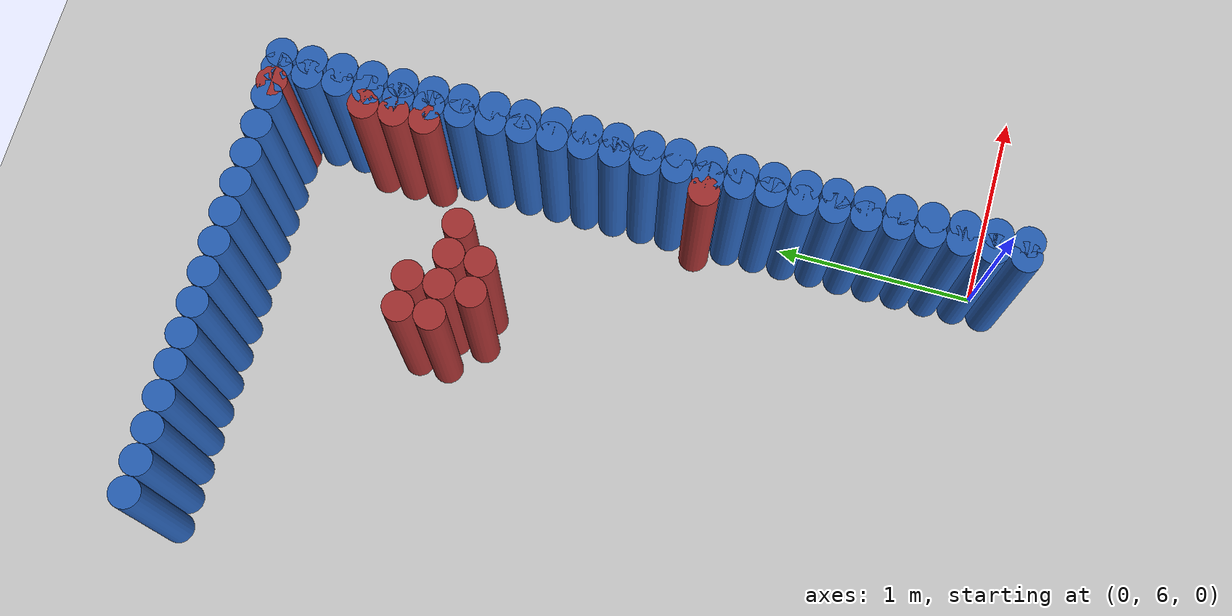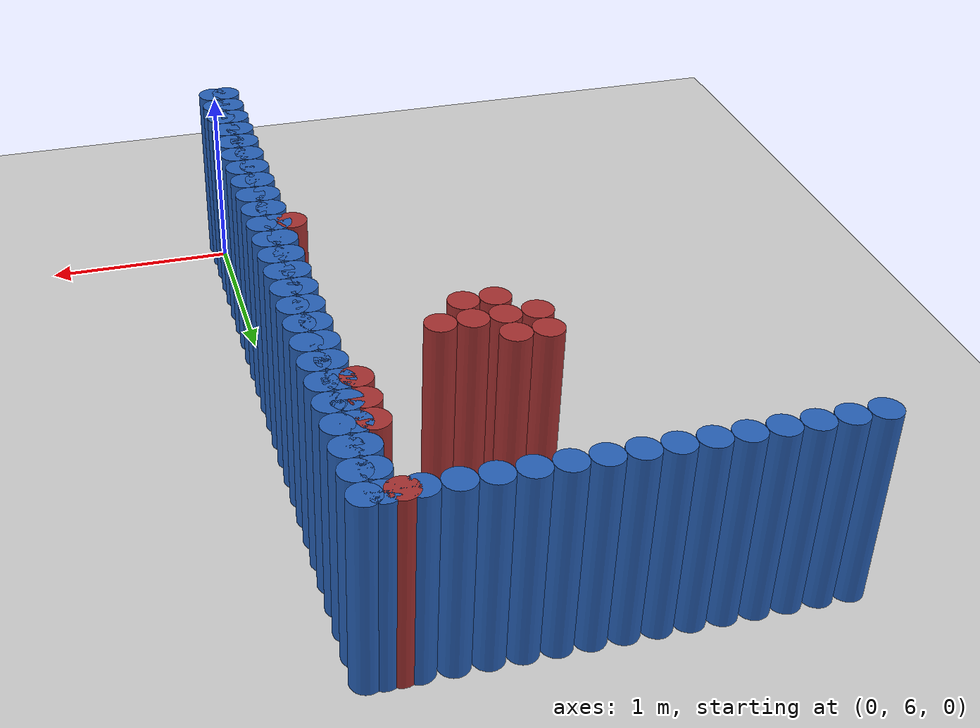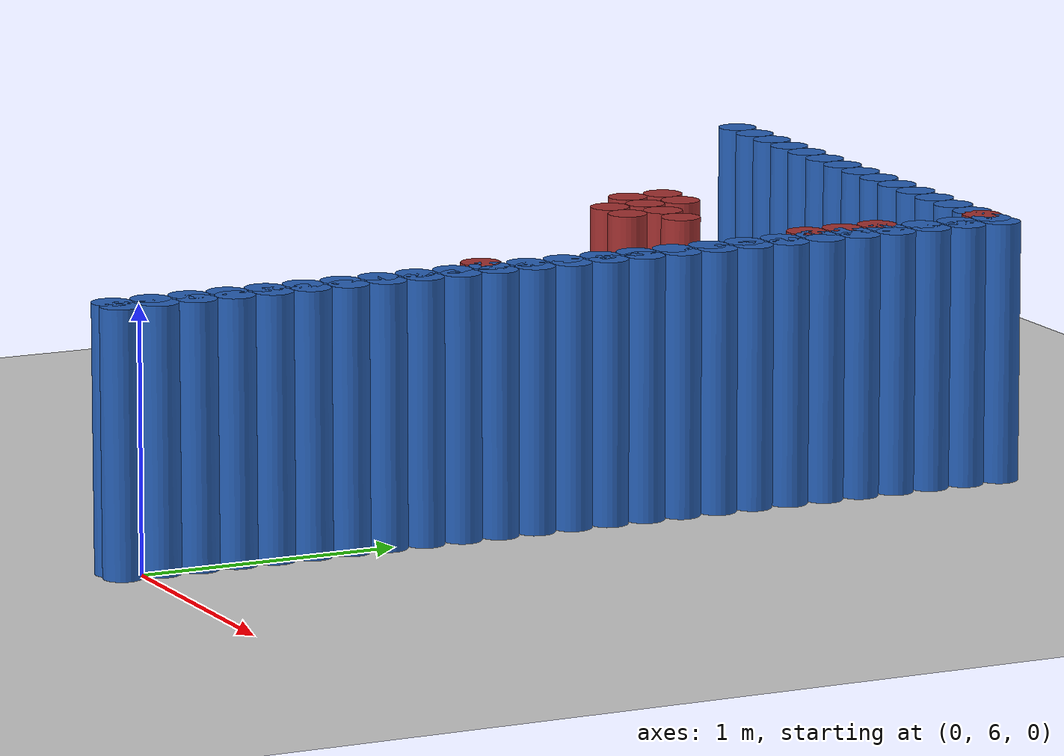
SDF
<sdf version="1.6">
 <world name="barn_world">
  <model name="ground_plane">
   <static>1</static>
   <link name="link">
    <collision name="collision">
     <geometry><plane><normal>0 0 1</normal><size>100 100</size></plane></geometry>
    </collision>
    <visual name="visual">
     <geometry><plane><normal>0 0 1</normal><size>100 100</size></plane></geometry>
     <material>
      <script><uri>file://media/materials/scripts/gazebo.material</uri><name>Gazebo/Grey</name></script>
     </material>
    </visual>
   </link>
  </model>
  <model name="unit_cylinder_175">
   <static>1</static>
   <pose>-1.0500 8.4750 0.5 0 0 0</pose>
   <link name="link">
    <collision name="collision">
     <geometry><cylinder><radius>0.075</radius><length>1</length></cylinder></geometry>
    </collision>
    <visual name="visual">
     <geometry><cylinder><radius>0.075</radius><length>1</length></cylinder></geometry>
     <material><ambient>0.648 0.192 0.192 1</ambient><diffuse>0.648 0.192 0.192 1</diffuse></material>
    </visual>
   </link>
  </model>
  <model name="unit_cylinder_176">
   <static>1</static>
   <pose>-1.0500 8.6250 0.5 0 0 0</pose>
   <link name="link">
    <collision name="collision">
     <geometry><cylinder><radius>0.075</radius><length>1</length></cylinder></geometry>
    </collision>
    <visual name="visual">
     <geometry><cylinder><radius>0.075</radius><length>1</length></cylinder></geometry>
     <material><ambient>0.648 0.192 0.192 1</ambient><diffuse>0.648 0.192 0.192 1</diffuse></material>
    </visual>
   </link>
  </model>
  <model name="unit_cylinder_177">
   <static>1</static>
   <pose>-0.9000 8.3250 0.5 0 0 0</pose>
   <link name="link">
    <collision name="collision">
     <geometry><cylinder><radius>0.075</radius><length>1</length></cylinder></geometry>
    </collision>
    <visual name="visual">
     <geometry><cylinder><radius>0.075</radius><length>1</length></cylinder></geometry>
     <material><ambient>0.648 0.192 0.192 1</ambient><diffuse>0.648 0.192 0.192 1</diffuse></material>
    </visual>
   </link>
  </model>
  <model name="unit_cylinder_178">
   <static>1</static>
   <pose>-0.9000 8.4750 0.5 0 0 0</pose>
   <link name="link">
    <collision name="collision">
     <geometry><cylinder><radius>0.075</radius><length>1</length></cylinder></geometry>
    </collision>
    <visual name="visual">
     <geometry><cylinder><radius>0.075</radius><length>1</length></cylinder></geometry>
     <material><ambient>0.648 0.192 0.192 1</ambient><diffuse>0.648 0.192 0.192 1</diffuse></material>
    </visual>
   </link>
  </model>
  <model name="unit_cylinder_179">
   <static>1</static>
   <pose>-0.9000 8.6250 0.5 0 0 0</pose>
   <link name="link">
    <collision name="collision">
     <geometry><cylinder><radius>0.075</radius><length>1</length></cylinder></geometry>
    </collision>
    <visual name="visual">
     <geometry><cylinder><radius>0.075</radius><length>1</length></cylinder></geometry>
     <material><ambient>0.648 0.192 0.192 1</ambient><diffuse>0.648 0.192 0.192 1</diffuse></material>
    </visual>
   </link>
  </model>
  <model name="unit_cylinder_180">
   <static>1</static>
   <pose>-0.7500 8.3250 0.5 0 0 0</pose>
   <link name="link">
    <collision name="collision">
     <geometry><cylinder><radius>0.075</radius><length>1</length></cylinder></geometry>
    </collision>
    <visual name="visual">
     <geometry><cylinder><radius>0.075</radius><length>1</length></cylinder></geometry>
     <material><ambient>0.648 0.192 0.192 1</ambient><diffuse>0.648 0.192 0.192 1</diffuse></material>
    </visual>
   </link>
  </model>
  <model name="unit_cylinder_181">
   <static>1</static>
   <pose>-0.7500 8.4750 0.5 0 0 0</pose>
   <link name="link">
    <collision name="collision">
     <geometry><cylinder><radius>0.075</radius><length>1</length></cylinder></geometry>
    </collision>
    <visual name="visual">
     <geometry><cylinder><radius>0.075</radius><length>1</length></cylinder></geometry>
     <material><ambient>0.648 0.192 0.192 1</ambient><diffuse>0.648 0.192 0.192 1</diffuse></material>
    </visual>
   </link>
  </model>
  <model name="unit_cylinder_182">
   <static>1</static>
   <pose>-0.6000 8.4750 0.5 0 0 0</pose>
   <link name="link">
    <collision name="collision">
     <geometry><cylinder><radius>0.075</radius><length>1</length></cylinder></geometry>
    </collision>
    <visual name="visual">
     <geometry><cylinder><radius>0.075</radius><length>1</length></cylinder></geometry>
     <material><ambient>0.648 0.192 0.192 1</ambient><diffuse>0.648 0.192 0.192 1</diffuse></material>
    </visual>
   </link>
  </model>
  <model name="unit_cylinder_186">
   <static>1</static>
   <pose>-0.1500 7.4250 0.5 0 0 0</pose>
   <link name="link">
    <collision name="collision">
     <geometry><cylinder><radius>0.075</radius><length>1</length></cylinder></geometry>
    </collision>
    <visual name="visual">
     <geometry><cylinder><radius>0.075</radius><length>1</length></cylinder></geometry>
     <material><ambient>0.648 0.192 0.192 1</ambient><diffuse>0.648 0.192 0.192 1</diffuse></material>
    </visual>
   </link>
  </model>
  <model name="unit_cylinder_187">
   <static>1</static>
   <pose>-0.1500 8.7750 0.5 0 0 0</pose>
   <link name="link">
    <collision name="collision">
     <geometry><cylinder><radius>0.075</radius><length>1</length></cylinder></geometry>
    </collision>
    <visual name="visual">
     <geometry><cylinder><radius>0.075</radius><length>1</length></cylinder></geometry>
     <material><ambient>0.648 0.192 0.192 1</ambient><diffuse>0.648 0.192 0.192 1</diffuse></material>
    </visual>
   </link>
  </model>
  <model name="unit_cylinder_188">
   <static>1</static>
   <pose>-0.1500 8.9250 0.5 0 0 0</pose>
   <link name="link">
    <collision name="collision">
     <geometry><cylinder><radius>0.075</radius><length>1</length></cylinder></geometry>
    </collision>
    <visual name="visual">
     <geometry><cylinder><radius>0.075</radius><length>1</length></cylinder></geometry>
     <material><ambient>0.648 0.192 0.192 1</ambient><diffuse>0.648 0.192 0.192 1</diffuse></material>
    </visual>
   </link>
  </model>
  <model name="unit_cylinder_189">
   <static>1</static>
   <pose>-0.1500 9.0750 0.5 0 0 0</pose>
   <link name="link">
    <collision name="collision">
     <geometry><cylinder><radius>0.075</radius><length>1</length></cylinder></geometry>
    </collision>
    <visual name="visual">
     <geometry><cylinder><radius>0.075</radius><length>1</length></cylinder></geometry>
     <material><ambient>0.648 0.192 0.192 1</ambient><diffuse>0.648 0.192 0.192 1</diffuse></material>
    </visual>
   </link>
  </model>
  <model name="unit_cylinder_190">
   <static>1</static>
   <pose>-0.1500 9.5250 0.5 0 0 0</pose>
   <link name="link">
    <collision name="collision">
     <geometry><cylinder><radius>0.075</radius><length>1</length></cylinder></geometry>
    </collision>
    <visual name="visual">
     <geometry><cylinder><radius>0.075</radius><length>1</length></cylinder></geometry>
     <material><ambient>0.648 0.192 0.192 1</ambient><diffuse>0.648 0.192 0.192 1</diffuse></material>
    </visual>
   </link>
  </model>
  <model name="unit_cylinder_196">
   <static>1</static>
   <pose>0.0000 5.9250 0.5 0 0 0</pose>
   <link name="link">
    <collision name="collision">
     <geometry><cylinder><radius>0.075</radius><length>1</length></cylinder></geometry>
    </collision>
    <visual name="visual">
     <geometry><cylinder><radius>0.075</radius><length>1</length></cylinder></geometry>
     <material><ambient>0.152 0.379 0.72 1</ambient><diffuse>0.152 0.379 0.72 1</diffuse></material>
    </visual>
   </link>
  </model>
  <model name="unit_cylinder_197">
   <static>1</static>
   <pose>0.0000 6.0750 0.5 0 0 0</pose>
   <link name="link">
    <collision name="collision">
     <geometry><cylinder><radius>0.075</radius><length>1</length></cylinder></geometry>
    </collision>
    <visual name="visual">
     <geometry><cylinder><radius>0.075</radius><length>1</length></cylinder></geometry>
     <material><ambient>0.152 0.379 0.72 1</ambient><diffuse>0.152 0.379 0.72 1</diffuse></material>
    </visual>
   </link>
  </model>
  <model name="unit_cylinder_198">
   <static>1</static>
   <pose>0.0000 6.2250 0.5 0 0 0</pose>
   <link name="link">
    <collision name="collision">
     <geometry><cylinder><radius>0.075</radius><length>1</length></cylinder></geometry>
    </collision>
    <visual name="visual">
     <geometry><cylinder><radius>0.075</radius><length>1</length></cylinder></geometry>
     <material><ambient>0.152 0.379 0.72 1</ambient><diffuse>0.152 0.379 0.72 1</diffuse></material>
    </visual>
   </link>
  </model>
  <model name="unit_cylinder_199">
   <static>1</static>
   <pose>0.0000 6.3750 0.5 0 0 0</pose>
   <link name="link">
    <collision name="collision">
     <geometry><cylinder><radius>0.075</radius><length>1</length></cylinder></geometry>
    </collision>
    <visual name="visual">
     <geometry><cylinder><radius>0.075</radius><length>1</length></cylinder></geometry>
     <material><ambient>0.152 0.379 0.72 1</ambient><diffuse>0.152 0.379 0.72 1</diffuse></material>
    </visual>
   </link>
  </model>
  <model name="unit_cylinder_200">
   <static>1</static>
   <pose>0.0000 6.5250 0.5 0 0 0</pose>
   <link name="link">
    <collision name="collision">
     <geometry><cylinder><radius>0.075</radius><length>1</length></cylinder></geometry>
    </collision>
    <visual name="visual">
     <geometry><cylinder><radius>0.075</radius><length>1</length></cylinder></geometry>
     <material><ambient>0.152 0.379 0.72 1</ambient><diffuse>0.152 0.379 0.72 1</diffuse></material>
    </visual>
   </link>
  </model>
  <model name="unit_cylinder_201">
   <static>1</static>
   <pose>0.0000 6.6750 0.5 0 0 0</pose>
   <link name="link">
    <collision name="collision">
     <geometry><cylinder><radius>0.075</radius><length>1</length></cylinder></geometry>
    </collision>
    <visual name="visual">
     <geometry><cylinder><radius>0.075</radius><length>1</length></cylinder></geometry>
     <material><ambient>0.152 0.379 0.72 1</ambient><diffuse>0.152 0.379 0.72 1</diffuse></material>
    </visual>
   </link>
  </model>
  <model name="unit_cylinder_202">
   <static>1</static>
   <pose>0.0000 6.8250 0.5 0 0 0</pose>
   <link name="link">
    <collision name="collision">
     <geometry><cylinder><radius>0.075</radius><length>1</length></cylinder></geometry>
    </collision>
    <visual name="visual">
     <geometry><cylinder><radius>0.075</radius><length>1</length></cylinder></geometry>
     <material><ambient>0.152 0.379 0.72 1</ambient><diffuse>0.152 0.379 0.72 1</diffuse></material>
    </visual>
   </link>
  </model>
  <model name="unit_cylinder_203">
   <static>1</static>
   <pose>0.0000 6.9750 0.5 0 0 0</pose>
   <link name="link">
    <collision name="collision">
     <geometry><cylinder><radius>0.075</radius><length>1</length></cylinder></geometry>
    </collision>
    <visual name="visual">
     <geometry><cylinder><radius>0.075</radius><length>1</length></cylinder></geometry>
     <material><ambient>0.152 0.379 0.72 1</ambient><diffuse>0.152 0.379 0.72 1</diffuse></material>
    </visual>
   </link>
  </model>
  <model name="unit_cylinder_204">
   <static>1</static>
   <pose>0.0000 7.1250 0.5 0 0 0</pose>
   <link name="link">
    <collision name="collision">
     <geometry><cylinder><radius>0.075</radius><length>1</length></cylinder></geometry>
    </collision>
    <visual name="visual">
     <geometry><cylinder><radius>0.075</radius><length>1</length></cylinder></geometry>
     <material><ambient>0.152 0.379 0.72 1</ambient><diffuse>0.152 0.379 0.72 1</diffuse></material>
    </visual>
   </link>
  </model>
  <model name="unit_cylinder_205">
   <static>1</static>
   <pose>0.0000 7.2750 0.5 0 0 0</pose>
   <link name="link">
    <collision name="collision">
     <geometry><cylinder><radius>0.075</radius><length>1</length></cylinder></geometry>
    </collision>
    <visual name="visual">
     <geometry><cylinder><radius>0.075</radius><length>1</length></cylinder></geometry>
     <material><ambient>0.152 0.379 0.72 1</ambient><diffuse>0.152 0.379 0.72 1</diffuse></material>
    </visual>
   </link>
  </model>
  <model name="unit_cylinder_206">
   <static>1</static>
   <pose>0.0000 7.4250 0.5 0 0 0</pose>
   <link name="link">
    <collision name="collision">
     <geometry><cylinder><radius>0.075</radius><length>1</length></cylinder></geometry>
    </collision>
    <visual name="visual">
     <geometry><cylinder><radius>0.075</radius><length>1</length></cylinder></geometry>
     <material><ambient>0.152 0.379 0.72 1</ambient><diffuse>0.152 0.379 0.72 1</diffuse></material>
    </visual>
   </link>
  </model>
  <model name="unit_cylinder_207">
   <static>1</static>
   <pose>0.0000 7.5750 0.5 0 0 0</pose>
   <link name="link">
    <collision name="collision">
     <geometry><cylinder><radius>0.075</radius><length>1</length></cylinder></geometry>
    </collision>
    <visual name="visual">
     <geometry><cylinder><radius>0.075</radius><length>1</length></cylinder></geometry>
     <material><ambient>0.152 0.379 0.72 1</ambient><diffuse>0.152 0.379 0.72 1</diffuse></material>
    </visual>
   </link>
  </model>
  <model name="unit_cylinder_208">
   <static>1</static>
   <pose>0.0000 7.7250 0.5 0 0 0</pose>
   <link name="link">
    <collision name="collision">
     <geometry><cylinder><radius>0.075</radius><length>1</length></cylinder></geometry>
    </collision>
    <visual name="visual">
     <geometry><cylinder><radius>0.075</radius><length>1</length></cylinder></geometry>
     <material><ambient>0.152 0.379 0.72 1</ambient><diffuse>0.152 0.379 0.72 1</diffuse></material>
    </visual>
   </link>
  </model>
  <model name="unit_cylinder_209">
   <static>1</static>
   <pose>0.0000 7.8750 0.5 0 0 0</pose>
   <link name="link">
    <collision name="collision">
     <geometry><cylinder><radius>0.075</radius><length>1</length></cylinder></geometry>
    </collision>
    <visual name="visual">
     <geometry><cylinder><radius>0.075</radius><length>1</length></cylinder></geometry>
     <material><ambient>0.152 0.379 0.72 1</ambient><diffuse>0.152 0.379 0.72 1</diffuse></material>
    </visual>
   </link>
  </model>
  <model name="unit_cylinder_210">
   <static>1</static>
   <pose>0.0000 8.0250 0.5 0 0 0</pose>
   <link name="link">
    <collision name="collision">
     <geometry><cylinder><radius>0.075</radius><length>1</length></cylinder></geometry>
    </collision>
    <visual name="visual">
     <geometry><cylinder><radius>0.075</radius><length>1</length></cylinder></geometry>
     <material><ambient>0.152 0.379 0.72 1</ambient><diffuse>0.152 0.379 0.72 1</diffuse></material>
    </visual>
   </link>
  </model>
  <model name="unit_cylinder_211">
   <static>1</static>
   <pose>0.0000 8.1750 0.5 0 0 0</pose>
   <link name="link">
    <collision name="collision">
     <geometry><cylinder><radius>0.075</radius><length>1</length></cylinder></geometry>
    </collision>
    <visual name="visual">
     <geometry><cylinder><radius>0.075</radius><length>1</length></cylinder></geometry>
     <material><ambient>0.152 0.379 0.72 1</ambient><diffuse>0.152 0.379 0.72 1</diffuse></material>
    </visual>
   </link>
  </model>
  <model name="unit_cylinder_212">
   <static>1</static>
   <pose>0.0000 8.3250 0.5 0 0 0</pose>
   <link name="link">
    <collision name="collision">
     <geometry><cylinder><radius>0.075</radius><length>1</length></cylinder></geometry>
    </collision>
    <visual name="visual">
     <geometry><cylinder><radius>0.075</radius><length>1</length></cylinder></geometry>
     <material><ambient>0.152 0.379 0.72 1</ambient><diffuse>0.152 0.379 0.72 1</diffuse></material>
    </visual>
   </link>
  </model>
  <model name="unit_cylinder_213">
   <static>1</static>
   <pose>0.0000 8.4750 0.5 0 0 0</pose>
   <link name="link">
    <collision name="collision">
     <geometry><cylinder><radius>0.075</radius><length>1</length></cylinder></geometry>
    </collision>
    <visual name="visual">
     <geometry><cylinder><radius>0.075</radius><length>1</length></cylinder></geometry>
     <material><ambient>0.152 0.379 0.72 1</ambient><diffuse>0.152 0.379 0.72 1</diffuse></material>
    </visual>
   </link>
  </model>
  <model name="unit_cylinder_214">
   <static>1</static>
   <pose>0.0000 8.6250 0.5 0 0 0</pose>
   <link name="link">
    <collision name="collision">
     <geometry><cylinder><radius>0.075</radius><length>1</length></cylinder></geometry>
    </collision>
    <visual name="visual">
     <geometry><cylinder><radius>0.075</radius><length>1</length></cylinder></geometry>
     <material><ambient>0.152 0.379 0.72 1</ambient><diffuse>0.152 0.379 0.72 1</diffuse></material>
    </visual>
   </link>
  </model>
  <model name="unit_cylinder_215">
   <static>1</static>
   <pose>0.0000 8.7750 0.5 0 0 0</pose>
   <link name="link">
    <collision name="collision">
     <geometry><cylinder><radius>0.075</radius><length>1</length></cylinder></geometry>
    </collision>
    <visual name="visual">
     <geometry><cylinder><radius>0.075</radius><length>1</length></cylinder></geometry>
     <material><ambient>0.152 0.379 0.72 1</ambient><diffuse>0.152 0.379 0.72 1</diffuse></material>
    </visual>
   </link>
  </model>
  <model name="unit_cylinder_216">
   <static>1</static>
   <pose>0.0000 8.9250 0.5 0 0 0</pose>
   <link name="link">
    <collision name="collision">
     <geometry><cylinder><radius>0.075</radius><length>1</length></cylinder></geometry>
    </collision>
    <visual name="visual">
     <geometry><cylinder><radius>0.075</radius><length>1</length></cylinder></geometry>
     <material><ambient>0.152 0.379 0.72 1</ambient><diffuse>0.152 0.379 0.72 1</diffuse></material>
    </visual>
   </link>
  </model>
  <model name="unit_cylinder_217">
   <static>1</static>
   <pose>0.0000 9.0750 0.5 0 0 0</pose>
   <link name="link">
    <collision name="collision">
     <geometry><cylinder><radius>0.075</radius><length>1</length></cylinder></geometry>
    </collision>
    <visual name="visual">
     <geometry><cylinder><radius>0.075</radius><length>1</length></cylinder></geometry>
     <material><ambient>0.152 0.379 0.72 1</ambient><diffuse>0.152 0.379 0.72 1</diffuse></material>
    </visual>
   </link>
  </model>
  <model name="unit_cylinder_218">
   <static>1</static>
   <pose>0.0000 9.2250 0.5 0 0 0</pose>
   <link name="link">
    <collision name="collision">
     <geometry><cylinder><radius>0.075</radius><length>1</length></cylinder></geometry>
    </collision>
    <visual name="visual">
     <geometry><cylinder><radius>0.075</radius><length>1</length></cylinder></geometry>
     <material><ambient>0.152 0.379 0.72 1</ambient><diffuse>0.152 0.379 0.72 1</diffuse></material>
    </visual>
   </link>
  </model>
  <model name="unit_cylinder_219">
   <static>1</static>
   <pose>0.0000 9.3750 0.5 0 0 0</pose>
   <link name="link">
    <collision name="collision">
     <geometry><cylinder><radius>0.075</radius><length>1</length></cylinder></geometry>
    </collision>
    <visual name="visual">
     <geometry><cylinder><radius>0.075</radius><length>1</length></cylinder></geometry>
     <material><ambient>0.152 0.379 0.72 1</ambient><diffuse>0.152 0.379 0.72 1</diffuse></material>
    </visual>
   </link>
  </model>
  <model name="unit_cylinder_220">
   <static>1</static>
   <pose>0.0000 9.5250 0.5 0 0 0</pose>
   <link name="link">
    <collision name="collision">
     <geometry><cylinder><radius>0.075</radius><length>1</length></cylinder></geometry>
    </collision>
    <visual name="visual">
     <geometry><cylinder><radius>0.075</radius><length>1</length></cylinder></geometry>
     <material><ambient>0.152 0.379 0.72 1</ambient><diffuse>0.152 0.379 0.72 1</diffuse></material>
    </visual>
   </link>
  </model>
  <model name="unit_cylinder_221">
   <static>1</static>
   <pose>-0.0750 9.5250 0.5 0 0 0</pose>
   <link name="link">
    <collision name="collision">
     <geometry><cylinder><radius>0.075</radius><length>1</length></cylinder></geometry>
    </collision>
    <visual name="visual">
     <geometry><cylinder><radius>0.075</radius><length>1</length></cylinder></geometry>
     <material><ambient>0.152 0.379 0.72 1</ambient><diffuse>0.152 0.379 0.72 1</diffuse></material>
    </visual>
   </link>
  </model>
  <model name="unit_cylinder_222">
   <static>1</static>
   <pose>-0.2250 9.5250 0.5 0 0 0</pose>
   <link name="link">
    <collision name="collision">
     <geometry><cylinder><radius>0.075</radius><length>1</length></cylinder></geometry>
    </collision>
    <visual name="visual">
     <geometry><cylinder><radius>0.075</radius><length>1</length></cylinder></geometry>
     <material><ambient>0.152 0.379 0.72 1</ambient><diffuse>0.152 0.379 0.72 1</diffuse></material>
    </visual>
   </link>
  </model>
  <model name="unit_cylinder_223">
   <static>1</static>
   <pose>-0.3750 9.5250 0.5 0 0 0</pose>
   <link name="link">
    <collision name="collision">
     <geometry><cylinder><radius>0.075</radius><length>1</length></cylinder></geometry>
    </collision>
    <visual name="visual">
     <geometry><cylinder><radius>0.075</radius><length>1</length></cylinder></geometry>
     <material><ambient>0.152 0.379 0.72 1</ambient><diffuse>0.152 0.379 0.72 1</diffuse></material>
    </visual>
   </link>
  </model>
  <model name="unit_cylinder_224">
   <static>1</static>
   <pose>-0.5250 9.5250 0.5 0 0 0</pose>
   <link name="link">
    <collision name="collision">
     <geometry><cylinder><radius>0.075</radius><length>1</length></cylinder></geometry>
    </collision>
    <visual name="visual">
     <geometry><cylinder><radius>0.075</radius><length>1</length></cylinder></geometry>
     <material><ambient>0.152 0.379 0.72 1</ambient><diffuse>0.152 0.379 0.72 1</diffuse></material>
    </visual>
   </link>
  </model>
  <model name="unit_cylinder_225">
   <static>1</static>
   <pose>-0.6750 9.5250 0.5 0 0 0</pose>
   <link name="link">
    <collision name="collision">
     <geometry><cylinder><radius>0.075</radius><length>1</length></cylinder></geometry>
    </collision>
    <visual name="visual">
     <geometry><cylinder><radius>0.075</radius><length>1</length></cylinder></geometry>
     <material><ambient>0.152 0.379 0.72 1</ambient><diffuse>0.152 0.379 0.72 1</diffuse></material>
    </visual>
   </link>
  </model>
  <model name="unit_cylinder_226">
   <static>1</static>
   <pose>-0.8250 9.5250 0.5 0 0 0</pose>
   <link name="link">
    <collision name="collision">
     <geometry><cylinder><radius>0.075</radius><length>1</length></cylinder></geometry>
    </collision>
    <visual name="visual">
     <geometry><cylinder><radius>0.075</radius><length>1</length></cylinder></geometry>
     <material><ambient>0.152 0.379 0.72 1</ambient><diffuse>0.152 0.379 0.72 1</diffuse></material>
    </visual>
   </link>
  </model>
  <model name="unit_cylinder_227">
   <static>1</static>
   <pose>-0.9750 9.5250 0.5 0 0 0</pose>
   <link name="link">
    <collision name="collision">
     <geometry><cylinder><radius>0.075</radius><length>1</length></cylinder></geometry>
    </collision>
    <visual name="visual">
     <geometry><cylinder><radius>0.075</radius><length>1</length></cylinder></geometry>
     <material><ambient>0.152 0.379 0.72 1</ambient><diffuse>0.152 0.379 0.72 1</diffuse></material>
    </visual>
   </link>
  </model>
  <model name="unit_cylinder_228">
   <static>1</static>
   <pose>-1.1250 9.5250 0.5 0 0 0</pose>
   <link name="link">
    <collision name="collision">
     <geometry><cylinder><radius>0.075</radius><length>1</length></cylinder></geometry>
    </collision>
    <visual name="visual">
     <geometry><cylinder><radius>0.075</radius><length>1</length></cylinder></geometry>
     <material><ambient>0.152 0.379 0.72 1</ambient><diffuse>0.152 0.379 0.72 1</diffuse></material>
    </visual>
   </link>
  </model>
  <model name="unit_cylinder_229">
   <static>1</static>
   <pose>-1.2750 9.5250 0.5 0 0 0</pose>
   <link name="link">
    <collision name="collision">
     <geometry><cylinder><radius>0.075</radius><length>1</length></cylinder></geometry>
    </collision>
    <visual name="visual">
     <geometry><cylinder><radius>0.075</radius><length>1</length></cylinder></geometry>
     <material><ambient>0.152 0.379 0.72 1</ambient><diffuse>0.152 0.379 0.72 1</diffuse></material>
    </visual>
   </link>
  </model>
  <model name="unit_cylinder_230">
   <static>1</static>
   <pose>-1.4250 9.5250 0.5 0 0 0</pose>
   <link name="link">
    <collision name="collision">
     <geometry><cylinder><radius>0.075</radius><length>1</length></cylinder></geometry>
    </collision>
    <visual name="visual">
     <geometry><cylinder><radius>0.075</radius><length>1</length></cylinder></geometry>
     <material><ambient>0.152 0.379 0.72 1</ambient><diffuse>0.152 0.379 0.72 1</diffuse></material>
    </visual>
   </link>
  </model>
  <model name="unit_cylinder_231">
   <static>1</static>
   <pose>-1.5750 9.5250 0.5 0 0 0</pose>
   <link name="link">
    <collision name="collision">
     <geometry><cylinder><radius>0.075</radius><length>1</length></cylinder></geometry>
    </collision>
    <visual name="visual">
     <geometry><cylinder><radius>0.075</radius><length>1</length></cylinder></geometry>
     <material><ambient>0.152 0.379 0.72 1</ambient><diffuse>0.152 0.379 0.72 1</diffuse></material>
    </visual>
   </link>
  </model>
  <model name="unit_cylinder_232">
   <static>1</static>
   <pose>-1.7250 9.5250 0.5 0 0 0</pose>
   <link name="link">
    <collision name="collision">
     <geometry><cylinder><radius>0.075</radius><length>1</length></cylinder></geometry>
    </collision>
    <visual name="visual">
     <geometry><cylinder><radius>0.075</radius><length>1</length></cylinder></geometry>
     <material><ambient>0.152 0.379 0.72 1</ambient><diffuse>0.152 0.379 0.72 1</diffuse></material>
    </visual>
   </link>
  </model>
  <model name="unit_cylinder_233">
   <static>1</static>
   <pose>-1.8750 9.5250 0.5 0 0 0</pose>
   <link name="link">
    <collision name="collision">
     <geometry><cylinder><radius>0.075</radius><length>1</length></cylinder></geometry>
    </collision>
    <visual name="visual">
     <geometry><cylinder><radius>0.075</radius><length>1</length></cylinder></geometry>
     <material><ambient>0.152 0.379 0.72 1</ambient><diffuse>0.152 0.379 0.72 1</diffuse></material>
    </visual>
   </link>
  </model>
  <model name="unit_cylinder_234">
   <static>1</static>
   <pose>-2.0250 9.5250 0.5 0 0 0</pose>
   <link name="link">
    <collision name="collision">
     <geometry><cylinder><radius>0.075</radius><length>1</length></cylinder></geometry>
    </collision>
    <visual name="visual">
     <geometry><cylinder><radius>0.075</radius><length>1</length></cylinder></geometry>
     <material><ambient>0.152 0.379 0.72 1</ambient><diffuse>0.152 0.379 0.72 1</diffuse></material>
    </visual>
   </link>
  </model>
  <model name="unit_cylinder_235">
   <static>1</static>
   <pose>-2.1750 9.5250 0.5 0 0 0</pose>
   <link name="link">
    <collision name="collision">
     <geometry><cylinder><radius>0.075</radius><length>1</length></cylinder></geometry>
    </collision>
    <visual name="visual">
     <geometry><cylinder><radius>0.075</radius><length>1</length></cylinder></geometry>
     <material><ambient>0.152 0.379 0.72 1</ambient><diffuse>0.152 0.379 0.72 1</diffuse></material>
    </visual>
   </link>
  </model>
  <model name="unit_cylinder_261">
   <static>1</static>
   <pose>-0.0750 5.9250 0.5 0 0 0</pose>
   <link name="link">
    <collision name="collision">
     <geometry><cylinder><radius>0.075</radius><length>1</length></cylinder></geometry>
    </collision>
    <visual name="visual">
     <geometry><cylinder><radius>0.075</radius><length>1</length></cylinder></geometry>
     <material><ambient>0.152 0.379 0.72 1</ambient><diffuse>0.152 0.379 0.72 1</diffuse></material>
    </visual>
   </link>
  </model>
  <model name="unit_cylinder_263">
   <static>1</static>
   <pose>-0.0750 6.0750 0.5 0 0 0</pose>
   <link name="link">
    <collision name="collision">
     <geometry><cylinder><radius>0.075</radius><length>1</length></cylinder></geometry>
    </collision>
    <visual name="visual">
     <geometry><cylinder><radius>0.075</radius><length>1</length></cylinder></geometry>
     <material><ambient>0.152 0.379 0.72 1</ambient><diffuse>0.152 0.379 0.72 1</diffuse></material>
    </visual>
   </link>
  </model>
  <model name="unit_cylinder_265">
   <static>1</static>
   <pose>-0.0750 6.2250 0.5 0 0 0</pose>
   <link name="link">
    <collision name="collision">
     <geometry><cylinder><radius>0.075</radius><length>1</length></cylinder></geometry>
    </collision>
    <visual name="visual">
     <geometry><cylinder><radius>0.075</radius><length>1</length></cylinder></geometry>
     <material><ambient>0.152 0.379 0.72 1</ambient><diffuse>0.152 0.379 0.72 1</diffuse></material>
    </visual>
   </link>
  </model>
  <model name="unit_cylinder_267">
   <static>1</static>
   <pose>-0.0750 6.3750 0.5 0 0 0</pose>
   <link name="link">
    <collision name="collision">
     <geometry><cylinder><radius>0.075</radius><length>1</length></cylinder></geometry>
    </collision>
    <visual name="visual">
     <geometry><cylinder><radius>0.075</radius><length>1</length></cylinder></geometry>
     <material><ambient>0.152 0.379 0.72 1</ambient><diffuse>0.152 0.379 0.72 1</diffuse></material>
    </visual>
   </link>
  </model>
  <model name="unit_cylinder_269">
   <static>1</static>
   <pose>-0.0750 6.5250 0.5 0 0 0</pose>
   <link name="link">
    <collision name="collision">
     <geometry><cylinder><radius>0.075</radius><length>1</length></cylinder></geometry>
    </collision>
    <visual name="visual">
     <geometry><cylinder><radius>0.075</radius><length>1</length></cylinder></geometry>
     <material><ambient>0.152 0.379 0.72 1</ambient><diffuse>0.152 0.379 0.72 1</diffuse></material>
    </visual>
   </link>
  </model>
  <model name="unit_cylinder_271">
   <static>1</static>
   <pose>-0.0750 6.6750 0.5 0 0 0</pose>
   <link name="link">
    <collision name="collision">
     <geometry><cylinder><radius>0.075</radius><length>1</length></cylinder></geometry>
    </collision>
    <visual name="visual">
     <geometry><cylinder><radius>0.075</radius><length>1</length></cylinder></geometry>
     <material><ambient>0.152 0.379 0.72 1</ambient><diffuse>0.152 0.379 0.72 1</diffuse></material>
    </visual>
   </link>
  </model>
  <model name="unit_cylinder_273">
   <static>1</static>
   <pose>-0.0750 6.8250 0.5 0 0 0</pose>
   <link name="link">
    <collision name="collision">
     <geometry><cylinder><radius>0.075</radius><length>1</length></cylinder></geometry>
    </collision>
    <visual name="visual">
     <geometry><cylinder><radius>0.075</radius><length>1</length></cylinder></geometry>
     <material><ambient>0.152 0.379 0.72 1</ambient><diffuse>0.152 0.379 0.72 1</diffuse></material>
    </visual>
   </link>
  </model>
  <model name="unit_cylinder_275">
   <static>1</static>
   <pose>-0.0750 6.9750 0.5 0 0 0</pose>
   <link name="link">
    <collision name="collision">
     <geometry><cylinder><radius>0.075</radius><length>1</length></cylinder></geometry>
    </collision>
    <visual name="visual">
     <geometry><cylinder><radius>0.075</radius><length>1</length></cylinder></geometry>
     <material><ambient>0.152 0.379 0.72 1</ambient><diffuse>0.152 0.379 0.72 1</diffuse></material>
    </visual>
   </link>
  </model>
  <model name="unit_cylinder_277">
   <static>1</static>
   <pose>-0.0750 7.1250 0.5 0 0 0</pose>
   <link name="link">
    <collision name="collision">
     <geometry><cylinder><radius>0.075</radius><length>1</length></cylinder></geometry>
    </collision>
    <visual name="visual">
     <geometry><cylinder><radius>0.075</radius><length>1</length></cylinder></geometry>
     <material><ambient>0.152 0.379 0.72 1</ambient><diffuse>0.152 0.379 0.72 1</diffuse></material>
    </visual>
   </link>
  </model>
  <model name="unit_cylinder_279">
   <static>1</static>
   <pose>-0.0750 7.2750 0.5 0 0 0</pose>
   <link name="link">
    <collision name="collision">
     <geometry><cylinder><radius>0.075</radius><length>1</length></cylinder></geometry>
    </collision>
    <visual name="visual">
     <geometry><cylinder><radius>0.075</radius><length>1</length></cylinder></geometry>
     <material><ambient>0.152 0.379 0.72 1</ambient><diffuse>0.152 0.379 0.72 1</diffuse></material>
    </visual>
   </link>
  </model>
  <model name="unit_cylinder_281">
   <static>1</static>
   <pose>-0.0750 7.4250 0.5 0 0 0</pose>
   <link name="link">
    <collision name="collision">
     <geometry><cylinder><radius>0.075</radius><length>1</length></cylinder></geometry>
    </collision>
    <visual name="visual">
     <geometry><cylinder><radius>0.075</radius><length>1</length></cylinder></geometry>
     <material><ambient>0.152 0.379 0.72 1</ambient><diffuse>0.152 0.379 0.72 1</diffuse></material>
    </visual>
   </link>
  </model>
  <model name="unit_cylinder_283">
   <static>1</static>
   <pose>-0.0750 7.5750 0.5 0 0 0</pose>
   <link name="link">
    <collision name="collision">
     <geometry><cylinder><radius>0.075</radius><length>1</length></cylinder></geometry>
    </collision>
    <visual name="visual">
     <geometry><cylinder><radius>0.075</radius><length>1</length></cylinder></geometry>
     <material><ambient>0.152 0.379 0.72 1</ambient><diffuse>0.152 0.379 0.72 1</diffuse></material>
    </visual>
   </link>
  </model>
  <model name="unit_cylinder_285">
   <static>1</static>
   <pose>-0.0750 7.7250 0.5 0 0 0</pose>
   <link name="link">
    <collision name="collision">
     <geometry><cylinder><radius>0.075</radius><length>1</length></cylinder></geometry>
    </collision>
    <visual name="visual">
     <geometry><cylinder><radius>0.075</radius><length>1</length></cylinder></geometry>
     <material><ambient>0.152 0.379 0.72 1</ambient><diffuse>0.152 0.379 0.72 1</diffuse></material>
    </visual>
   </link>
  </model>
  <model name="unit_cylinder_287">
   <static>1</static>
   <pose>-0.0750 7.8750 0.5 0 0 0</pose>
   <link name="link">
    <collision name="collision">
     <geometry><cylinder><radius>0.075</radius><length>1</length></cylinder></geometry>
    </collision>
    <visual name="visual">
     <geometry><cylinder><radius>0.075</radius><length>1</length></cylinder></geometry>
     <material><ambient>0.152 0.379 0.72 1</ambient><diffuse>0.152 0.379 0.72 1</diffuse></material>
    </visual>
   </link>
  </model>
  <model name="unit_cylinder_289">
   <static>1</static>
   <pose>-0.0750 8.0250 0.5 0 0 0</pose>
   <link name="link">
    <collision name="collision">
     <geometry><cylinder><radius>0.075</radius><length>1</length></cylinder></geometry>
    </collision>
    <visual name="visual">
     <geometry><cylinder><radius>0.075</radius><length>1</length></cylinder></geometry>
     <material><ambient>0.152 0.379 0.72 1</ambient><diffuse>0.152 0.379 0.72 1</diffuse></material>
    </visual>
   </link>
  </model>
  <model name="unit_cylinder_291">
   <static>1</static>
   <pose>-0.0750 8.1750 0.5 0 0 0</pose>
   <link name="link">
    <collision name="collision">
     <geometry><cylinder><radius>0.075</radius><length>1</length></cylinder></geometry>
    </collision>
    <visual name="visual">
     <geometry><cylinder><radius>0.075</radius><length>1</length></cylinder></geometry>
     <material><ambient>0.152 0.379 0.72 1</ambient><diffuse>0.152 0.379 0.72 1</diffuse></material>
    </visual>
   </link>
  </model>
  <model name="unit_cylinder_293">
   <static>1</static>
   <pose>-0.0750 8.3250 0.5 0 0 0</pose>
   <link name="link">
    <collision name="collision">
     <geometry><cylinder><radius>0.075</radius><length>1</length></cylinder></geometry>
    </collision>
    <visual name="visual">
     <geometry><cylinder><radius>0.075</radius><length>1</length></cylinder></geometry>
     <material><ambient>0.152 0.379 0.72 1</ambient><diffuse>0.152 0.379 0.72 1</diffuse></material>
    </visual>
   </link>
  </model>
  <model name="unit_cylinder_295">
   <static>1</static>
   <pose>-0.0750 8.4750 0.5 0 0 0</pose>
   <link name="link">
    <collision name="collision">
     <geometry><cylinder><radius>0.075</radius><length>1</length></cylinder></geometry>
    </collision>
    <visual name="visual">
     <geometry><cylinder><radius>0.075</radius><length>1</length></cylinder></geometry>
     <material><ambient>0.152 0.379 0.72 1</ambient><diffuse>0.152 0.379 0.72 1</diffuse></material>
    </visual>
   </link>
  </model>
  <model name="unit_cylinder_297">
   <static>1</static>
   <pose>-0.0750 8.6250 0.5 0 0 0</pose>
   <link name="link">
    <collision name="collision">
     <geometry><cylinder><radius>0.075</radius><length>1</length></cylinder></geometry>
    </collision>
    <visual name="visual">
     <geometry><cylinder><radius>0.075</radius><length>1</length></cylinder></geometry>
     <material><ambient>0.152 0.379 0.72 1</ambient><diffuse>0.152 0.379 0.72 1</diffuse></material>
    </visual>
   </link>
  </model>
  <model name="unit_cylinder_299">
   <static>1</static>
   <pose>-0.0750 8.7750 0.5 0 0 0</pose>
   <link name="link">
    <collision name="collision">
     <geometry><cylinder><radius>0.075</radius><length>1</length></cylinder></geometry>
    </collision>
    <visual name="visual">
     <geometry><cylinder><radius>0.075</radius><length>1</length></cylinder></geometry>
     <material><ambient>0.152 0.379 0.72 1</ambient><diffuse>0.152 0.379 0.72 1</diffuse></material>
    </visual>
   </link>
  </model>
  <model name="unit_cylinder_301">
   <static>1</static>
   <pose>-0.0750 8.9250 0.5 0 0 0</pose>
   <link name="link">
    <collision name="collision">
     <geometry><cylinder><radius>0.075</radius><length>1</length></cylinder></geometry>
    </collision>
    <visual name="visual">
     <geometry><cylinder><radius>0.075</radius><length>1</length></cylinder></geometry>
     <material><ambient>0.152 0.379 0.72 1</ambient><diffuse>0.152 0.379 0.72 1</diffuse></material>
    </visual>
   </link>
  </model>
  <model name="unit_cylinder_303">
   <static>1</static>
   <pose>-0.0750 9.0750 0.5 0 0 0</pose>
   <link name="link">
    <collision name="collision">
     <geometry><cylinder><radius>0.075</radius><length>1</length></cylinder></geometry>
    </collision>
    <visual name="visual">
     <geometry><cylinder><radius>0.075</radius><length>1</length></cylinder></geometry>
     <material><ambient>0.152 0.379 0.72 1</ambient><diffuse>0.152 0.379 0.72 1</diffuse></material>
    </visual>
   </link>
  </model>
  <model name="unit_cylinder_305">
   <static>1</static>
   <pose>-0.0750 9.2250 0.5 0 0 0</pose>
   <link name="link">
    <collision name="collision">
     <geometry><cylinder><radius>0.075</radius><length>1</length></cylinder></geometry>
    </collision>
    <visual name="visual">
     <geometry><cylinder><radius>0.075</radius><length>1</length></cylinder></geometry>
     <material><ambient>0.152 0.379 0.72 1</ambient><diffuse>0.152 0.379 0.72 1</diffuse></material>
    </visual>
   </link>
  </model>
  <model name="unit_cylinder_307">
   <static>1</static>
   <pose>-0.0750 9.3750 0.5 0 0 0</pose>
   <link name="link">
    <collision name="collision">
     <geometry><cylinder><radius>0.075</radius><length>1</length></cylinder></geometry>
    </collision>
    <visual name="visual">
     <geometry><cylinder><radius>0.075</radius><length>1</length></cylinder></geometry>
     <material><ambient>0.152 0.379 0.72 1</ambient><diffuse>0.152 0.379 0.72 1</diffuse></material>
    </visual>
   </link>
  </model>
 </world>
</sdf>
